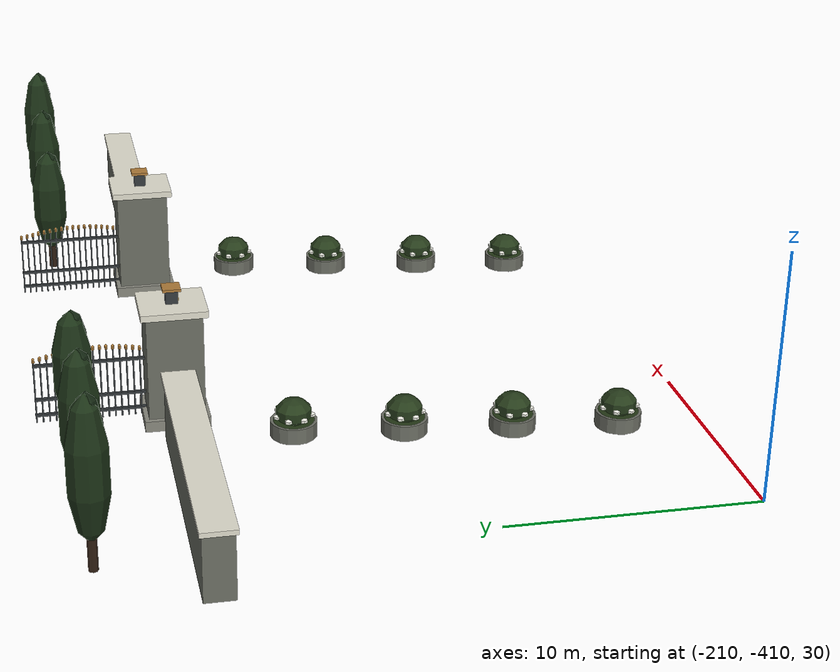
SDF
<?xml version='1.0' encoding='utf-8'?>
<sdf version="1.9">
  <model name="estate_entrance">
    <static>true</static>
    <link name="structure">
      <visual name="visual_stone">
        <geometry>
          <mesh>
            <uri>model://estate_entrance/meshes/visual/stone.dae</uri>
          </mesh>
        </geometry>
        <material>
          <ambient>0.42 0.43 0.39 1</ambient>
          <diffuse>0.42 0.43 0.39 1</diffuse>
          <specular>0.15 0.15 0.15 1</specular>
          <pbr>
            <metal>
              <roughness>0.8</roughness>
              <metalness>0.0</metalness>
            </metal>
          </pbr>
        </material>
      </visual>
      <visual name="visual_paving">
        <geometry>
          <mesh>
            <uri>model://estate_entrance/meshes/visual/paving.dae</uri>
          </mesh>
        </geometry>
        <material>
          <ambient>0.53 0.53 0.49 1</ambient>
          <diffuse>0.53 0.53 0.49 1</diffuse>
          <specular>0.15 0.15 0.15 1</specular>
          <pbr>
            <metal>
              <roughness>0.8</roughness>
              <metalness>0.0</metalness>
            </metal>
          </pbr>
        </material>
      </visual>
      <visual name="visual_ivory">
        <geometry>
          <mesh>
            <uri>model://estate_entrance/meshes/visual/ivory.dae</uri>
          </mesh>
        </geometry>
        <material>
          <ambient>0.88 0.87 0.81 1</ambient>
          <diffuse>0.88 0.87 0.81 1</diffuse>
          <specular>0.15 0.15 0.15 1</specular>
          <pbr>
            <metal>
              <roughness>0.8</roughness>
              <metalness>0.0</metalness>
            </metal>
          </pbr>
        </material>
      </visual>
      <visual name="visual_metal">
        <geometry>
          <mesh>
            <uri>model://estate_entrance/meshes/visual/metal.dae</uri>
          </mesh>
        </geometry>
        <material>
          <ambient>0.21 0.23 0.24 1</ambient>
          <diffuse>0.21 0.23 0.24 1</diffuse>
          <specular>0.15 0.15 0.15 1</specular>
          <pbr>
            <metal>
              <roughness>0.35</roughness>
              <metalness>0.65</metalness>
            </metal>
          </pbr>
        </material>
      </visual>
      <visual name="visual_trunk">
        <geometry>
          <mesh>
            <uri>model://estate_entrance/meshes/visual/trunk.dae</uri>
          </mesh>
        </geometry>
        <material>
          <ambient>0.19 0.12 0.072 1</ambient>
          <diffuse>0.19 0.12 0.072 1</diffuse>
          <specular>0.15 0.15 0.15 1</specular>
          <pbr>
            <metal>
              <roughness>0.8</roughness>
              <metalness>0.0</metalness>
            </metal>
          </pbr>
        </material>
      </visual>
      <visual name="visual_charcoal">
        <geometry>
          <mesh>
            <uri>model://estate_entrance/meshes/visual/charcoal.dae</uri>
          </mesh>
        </geometry>
        <material>
          <ambient>0.045 0.054 0.06 1</ambient>
          <diffuse>0.045 0.054 0.06 1</diffuse>
          <specular>0.15 0.15 0.15 1</specular>
          <pbr>
            <metal>
              <roughness>0.8</roughness>
              <metalness>0.0</metalness>
            </metal>
          </pbr>
        </material>
      </visual>
      <visual name="visual_brass">
        <geometry>
          <mesh>
            <uri>model://estate_entrance/meshes/visual/brass.dae</uri>
          </mesh>
        </geometry>
        <material>
          <ambient>0.68 0.48 0.22 1</ambient>
          <diffuse>0.68 0.48 0.22 1</diffuse>
          <specular>0.15 0.15 0.15 1</specular>
          <pbr>
            <metal>
              <roughness>0.35</roughness>
              <metalness>0.65</metalness>
            </metal>
          </pbr>
        </material>
      </visual>
      <visual name="visual_emissive">
        <geometry>
          <mesh>
            <uri>model://estate_entrance/meshes/visual/emissive.dae</uri>
          </mesh>
        </geometry>
        <material>
          <ambient>0.94 0.73 0.36 1</ambient>
          <diffuse>0.94 0.73 0.36 1</diffuse>
          <specular>0.15 0.15 0.15 1</specular>
          <emissive>0.517 0.4015 0.198 1</emissive>
          <pbr>
            <metal>
              <roughness>0.8</roughness>
              <metalness>0.0</metalness>
            </metal>
          </pbr>
        </material>
      </visual>
      <visual name="visual_grass_dark">
        <geometry>
          <mesh>
            <uri>model://estate_entrance/meshes/visual/grass_dark.dae</uri>
          </mesh>
        </geometry>
        <material>
          <ambient>0.14 0.22 0.085 1</ambient>
          <diffuse>0.14 0.22 0.085 1</diffuse>
          <specular>0.15 0.15 0.15 1</specular>
          <pbr>
            <metal>
              <roughness>0.8</roughness>
              <metalness>0.0</metalness>
            </metal>
          </pbr>
        </material>
      </visual>
      <visual name="visual_leaf0">
        <geometry>
          <mesh>
            <uri>model://estate_entrance/meshes/visual/leaf0.dae</uri>
          </mesh>
        </geometry>
        <material>
          <ambient>0.072 0.145 0.065 1</ambient>
          <diffuse>0.072 0.145 0.065 1</diffuse>
          <specular>0.15 0.15 0.15 1</specular>
          <pbr>
            <metal>
              <roughness>0.8</roughness>
              <metalness>0.0</metalness>
            </metal>
          </pbr>
        </material>
      </visual>
      <visual name="visual_leaf1">
        <geometry>
          <mesh>
            <uri>model://estate_entrance/meshes/visual/leaf1.dae</uri>
          </mesh>
        </geometry>
        <material>
          <ambient>0.105 0.195 0.085 1</ambient>
          <diffuse>0.105 0.195 0.085 1</diffuse>
          <specular>0.15 0.15 0.15 1</specular>
          <pbr>
            <metal>
              <roughness>0.8</roughness>
              <metalness>0.0</metalness>
            </metal>
          </pbr>
        </material>
      </visual>
      <visual name="visual_leaf2">
        <geometry>
          <mesh>
            <uri>model://estate_entrance/meshes/visual/leaf2.dae</uri>
          </mesh>
        </geometry>
        <material>
          <ambient>0.15 0.235 0.105 1</ambient>
          <diffuse>0.15 0.235 0.105 1</diffuse>
          <specular>0.15 0.15 0.15 1</specular>
          <pbr>
            <metal>
              <roughness>0.8</roughness>
              <metalness>0.0</metalness>
            </metal>
          </pbr>
        </material>
      </visual>
      <visual name="visual_white">
        <geometry>
          <mesh>
            <uri>model://estate_entrance/meshes/visual/white.dae</uri>
          </mesh>
        </geometry>
        <material>
          <ambient>0.93 0.93 0.89 1</ambient>
          <diffuse>0.93 0.93 0.89 1</diffuse>
          <specular>0.15 0.15 0.15 1</specular>
          <pbr>
            <metal>
              <roughness>0.8</roughness>
              <metalness>0.0</metalness>
            </metal>
          </pbr>
        </material>
      </visual>
      <collision name="west_gate_pier">
        <geometry>
          <box>
            <size>2.2 2.5 5.4</size>
          </box>
        </geometry>
        <pose>-192.4 -390 29.1 0 0 0</pose>
      </collision>
      <collision name="west_pier_base">
        <geometry>
          <box>
            <size>2.7 2.9 0.5</size>
          </box>
        </geometry>
        <pose>-192.4 -390 26.65 0 0 0</pose>
      </collision>
      <collision name="west_pier_cap">
        <geometry>
          <box>
            <size>2.65 2.95 0.3</size>
          </box>
        </geometry>
        <pose>-192.4 -390 31.83 0 0 0</pose>
      </collision>
      <collision name="west_leaf_rail_0.5">
        <geometry>
          <box>
            <size>0.14 5.9 0.12</size>
          </box>
        </geometry>
        <pose>-192.2 -386.8 26.9 0 0 0</pose>
      </collision>
      <collision name="west_leaf_rail_1.25">
        <geometry>
          <box>
            <size>0.14 5.9 0.12</size>
          </box>
        </geometry>
        <pose>-192.2 -386.8 27.65 0 0 0</pose>
      </collision>
      <collision name="west_leaf_rail_2.9">
        <geometry>
          <box>
            <size>0.14 5.9 0.12</size>
          </box>
        </geometry>
        <pose>-192.2 -386.8 29.3 0 0 0</pose>
      </collision>
      <collision name="west_picket_0">
        <geometry>
          <box>
            <size>0.065 0.065 2.95</size>
          </box>
        </geometry>
        <pose>-192.2 -389.7 28.025 0 0 0</pose>
      </collision>
      <collision name="west_picket_1">
        <geometry>
          <box>
            <size>0.065 0.065 3.01257</size>
          </box>
        </geometry>
        <pose>-192.2 -389.41 28.0563 0 0 0</pose>
      </collision>
      <collision name="west_picket_2">
        <geometry>
          <box>
            <size>0.065 0.065 3.07361</size>
          </box>
        </geometry>
        <pose>-192.2 -389.12 28.0868 0 0 0</pose>
      </collision>
      <collision name="west_picket_3">
        <geometry>
          <box>
            <size>0.065 0.065 3.1316</size>
          </box>
        </geometry>
        <pose>-192.2 -388.83 28.1158 0 0 0</pose>
      </collision>
      <collision name="west_picket_4">
        <geometry>
          <box>
            <size>0.065 0.065 3.18511</size>
          </box>
        </geometry>
        <pose>-192.2 -388.54 28.1426 0 0 0</pose>
      </collision>
      <collision name="west_picket_5">
        <geometry>
          <box>
            <size>0.065 0.065 3.23284</size>
          </box>
        </geometry>
        <pose>-192.2 -388.25 28.1664 0 0 0</pose>
      </collision>
      <collision name="west_picket_6">
        <geometry>
          <box>
            <size>0.065 0.065 3.27361</size>
          </box>
        </geometry>
        <pose>-192.2 -387.96 28.1868 0 0 0</pose>
      </collision>
      <collision name="west_picket_7">
        <geometry>
          <box>
            <size>0.065 0.065 3.3064</size>
          </box>
        </geometry>
        <pose>-192.2 -387.67 28.2032 0 0 0</pose>
      </collision>
      <collision name="west_picket_8">
        <geometry>
          <box>
            <size>0.065 0.065 3.33042</size>
          </box>
        </geometry>
        <pose>-192.2 -387.38 28.2152 0 0 0</pose>
      </collision>
      <collision name="west_picket_9">
        <geometry>
          <box>
            <size>0.065 0.065 3.34508</size>
          </box>
        </geometry>
        <pose>-192.2 -387.09 28.2225 0 0 0</pose>
      </collision>
      <collision name="west_picket_10">
        <geometry>
          <box>
            <size>0.065 0.065 3.35</size>
          </box>
        </geometry>
        <pose>-192.2 -386.8 28.225 0 0 0</pose>
      </collision>
      <collision name="west_picket_11">
        <geometry>
          <box>
            <size>0.065 0.065 3.34508</size>
          </box>
        </geometry>
        <pose>-192.2 -386.51 28.2225 0 0 0</pose>
      </collision>
      <collision name="west_picket_12">
        <geometry>
          <box>
            <size>0.065 0.065 3.33042</size>
          </box>
        </geometry>
        <pose>-192.2 -386.22 28.2152 0 0 0</pose>
      </collision>
      <collision name="west_picket_13">
        <geometry>
          <box>
            <size>0.065 0.065 3.3064</size>
          </box>
        </geometry>
        <pose>-192.2 -385.93 28.2032 0 0 0</pose>
      </collision>
      <collision name="west_picket_14">
        <geometry>
          <box>
            <size>0.065 0.065 3.27361</size>
          </box>
        </geometry>
        <pose>-192.2 -385.64 28.1868 0 0 0</pose>
      </collision>
      <collision name="west_picket_15">
        <geometry>
          <box>
            <size>0.065 0.065 3.23284</size>
          </box>
        </geometry>
        <pose>-192.2 -385.35 28.1664 0 0 0</pose>
      </collision>
      <collision name="west_picket_16">
        <geometry>
          <box>
            <size>0.065 0.065 3.18511</size>
          </box>
        </geometry>
        <pose>-192.2 -385.06 28.1426 0 0 0</pose>
      </collision>
      <collision name="west_picket_17">
        <geometry>
          <box>
            <size>0.065 0.065 3.1316</size>
          </box>
        </geometry>
        <pose>-192.2 -384.77 28.1158 0 0 0</pose>
      </collision>
      <collision name="west_picket_18">
        <geometry>
          <box>
            <size>0.065 0.065 3.07361</size>
          </box>
        </geometry>
        <pose>-192.2 -384.48 28.0868 0 0 0</pose>
      </collision>
      <collision name="west_picket_19">
        <geometry>
          <box>
            <size>0.065 0.065 3.01257</size>
          </box>
        </geometry>
        <pose>-192.2 -384.19 28.0563 0 0 0</pose>
      </collision>
      <collision name="west_picket_20">
        <geometry>
          <box>
            <size>0.065 0.065 2.95</size>
          </box>
        </geometry>
        <pose>-192.2 -383.9 28.025 0 0 0</pose>
      </collision>
      <collision name="west_entry_wing">
        <geometry>
          <box>
            <size>13 1.3 3</size>
          </box>
        </geometry>
        <pose>-201 -390 27.9 0 0 0</pose>
      </collision>
      <collision name="west_wing_cap">
        <geometry>
          <box>
            <size>13.4 1.5 0.22</size>
          </box>
        </geometry>
        <pose>-201 -390 29.45 0 0 0</pose>
      </collision>
      <collision name="west_entry_cypress_0_trunk">
        <geometry>
          <cylinder>
            <radius>0.2</radius>
            <length>3.1</length>
          </cylinder>
        </geometry>
        <pose>-195 -385.5 28.3 0 0 0</pose>
      </collision>
      <collision name="west_entry_cypress_1_trunk">
        <geometry>
          <cylinder>
            <radius>0.2</radius>
            <length>3.4</length>
          </cylinder>
        </geometry>
        <pose>-200 -385.5 28.45 0 0 0</pose>
      </collision>
      <collision name="west_entry_cypress_2_trunk">
        <geometry>
          <cylinder>
            <radius>0.2</radius>
            <length>3.7</length>
          </cylinder>
        </geometry>
        <pose>-205 -385.5 28.6 0 0 0</pose>
      </collision>
      <collision name="west_approach_planter_0">
        <geometry>
          <cylinder>
            <radius>1.05</radius>
            <length>0.72</length>
          </cylinder>
        </geometry>
        <pose>-194.5 -395 26.46 0 0 0</pose>
      </collision>
      <collision name="west_approach_planter_1">
        <geometry>
          <cylinder>
            <radius>1.05</radius>
            <length>0.72</length>
          </cylinder>
        </geometry>
        <pose>-194.5 -400 26.14 0 0 0</pose>
      </collision>
      <collision name="west_approach_planter_2">
        <geometry>
          <cylinder>
            <radius>1.05</radius>
            <length>0.72</length>
          </cylinder>
        </geometry>
        <pose>-194.5 -405 25.82 0 0 0</pose>
      </collision>
      <collision name="west_approach_planter_3">
        <geometry>
          <cylinder>
            <radius>1.05</radius>
            <length>0.72</length>
          </cylinder>
        </geometry>
        <pose>-194.5 -410 25.5 0 0 0</pose>
      </collision>
      <collision name="east_gate_pier">
        <geometry>
          <box>
            <size>2.2 2.5 5.4</size>
          </box>
        </geometry>
        <pose>-177.6 -390 29.1 0 0 0</pose>
      </collision>
      <collision name="east_pier_base">
        <geometry>
          <box>
            <size>2.7 2.9 0.5</size>
          </box>
        </geometry>
        <pose>-177.6 -390 26.65 0 0 0</pose>
      </collision>
      <collision name="east_pier_cap">
        <geometry>
          <box>
            <size>2.65 2.95 0.3</size>
          </box>
        </geometry>
        <pose>-177.6 -390 31.83 0 0 0</pose>
      </collision>
      <collision name="east_leaf_rail_0.5">
        <geometry>
          <box>
            <size>0.14 5.9 0.12</size>
          </box>
        </geometry>
        <pose>-177.8 -386.8 26.9 0 0 0</pose>
      </collision>
      <collision name="east_leaf_rail_1.25">
        <geometry>
          <box>
            <size>0.14 5.9 0.12</size>
          </box>
        </geometry>
        <pose>-177.8 -386.8 27.65 0 0 0</pose>
      </collision>
      <collision name="east_leaf_rail_2.9">
        <geometry>
          <box>
            <size>0.14 5.9 0.12</size>
          </box>
        </geometry>
        <pose>-177.8 -386.8 29.3 0 0 0</pose>
      </collision>
      <collision name="east_picket_0">
        <geometry>
          <box>
            <size>0.065 0.065 2.95</size>
          </box>
        </geometry>
        <pose>-177.8 -389.7 28.025 0 0 0</pose>
      </collision>
      <collision name="east_picket_1">
        <geometry>
          <box>
            <size>0.065 0.065 3.01257</size>
          </box>
        </geometry>
        <pose>-177.8 -389.41 28.0563 0 0 0</pose>
      </collision>
      <collision name="east_picket_2">
        <geometry>
          <box>
            <size>0.065 0.065 3.07361</size>
          </box>
        </geometry>
        <pose>-177.8 -389.12 28.0868 0 0 0</pose>
      </collision>
      <collision name="east_picket_3">
        <geometry>
          <box>
            <size>0.065 0.065 3.1316</size>
          </box>
        </geometry>
        <pose>-177.8 -388.83 28.1158 0 0 0</pose>
      </collision>
      <collision name="east_picket_4">
        <geometry>
          <box>
            <size>0.065 0.065 3.18511</size>
          </box>
        </geometry>
        <pose>-177.8 -388.54 28.1426 0 0 0</pose>
      </collision>
      <collision name="east_picket_5">
        <geometry>
          <box>
            <size>0.065 0.065 3.23284</size>
          </box>
        </geometry>
        <pose>-177.8 -388.25 28.1664 0 0 0</pose>
      </collision>
      <collision name="east_picket_6">
        <geometry>
          <box>
            <size>0.065 0.065 3.27361</size>
          </box>
        </geometry>
        <pose>-177.8 -387.96 28.1868 0 0 0</pose>
      </collision>
      <collision name="east_picket_7">
        <geometry>
          <box>
            <size>0.065 0.065 3.3064</size>
          </box>
        </geometry>
        <pose>-177.8 -387.67 28.2032 0 0 0</pose>
      </collision>
      <collision name="east_picket_8">
        <geometry>
          <box>
            <size>0.065 0.065 3.33042</size>
          </box>
        </geometry>
        <pose>-177.8 -387.38 28.2152 0 0 0</pose>
      </collision>
      <collision name="east_picket_9">
        <geometry>
          <box>
            <size>0.065 0.065 3.34508</size>
          </box>
        </geometry>
        <pose>-177.8 -387.09 28.2225 0 0 0</pose>
      </collision>
      <collision name="east_picket_10">
        <geometry>
          <box>
            <size>0.065 0.065 3.35</size>
          </box>
        </geometry>
        <pose>-177.8 -386.8 28.225 0 0 0</pose>
      </collision>
      <collision name="east_picket_11">
        <geometry>
          <box>
            <size>0.065 0.065 3.34508</size>
          </box>
        </geometry>
        <pose>-177.8 -386.51 28.2225 0 0 0</pose>
      </collision>
      <collision name="east_picket_12">
        <geometry>
          <box>
            <size>0.065 0.065 3.33042</size>
          </box>
        </geometry>
        <pose>-177.8 -386.22 28.2152 0 0 0</pose>
      </collision>
      <collision name="east_picket_13">
        <geometry>
          <box>
            <size>0.065 0.065 3.3064</size>
          </box>
        </geometry>
        <pose>-177.8 -385.93 28.2032 0 0 0</pose>
      </collision>
      <collision name="east_picket_14">
        <geometry>
          <box>
            <size>0.065 0.065 3.27361</size>
          </box>
        </geometry>
        <pose>-177.8 -385.64 28.1868 0 0 0</pose>
      </collision>
      <collision name="east_picket_15">
        <geometry>
          <box>
            <size>0.065 0.065 3.23284</size>
          </box>
        </geometry>
        <pose>-177.8 -385.35 28.1664 0 0 0</pose>
      </collision>
      <collision name="east_picket_16">
        <geometry>
          <box>
            <size>0.065 0.065 3.18511</size>
          </box>
        </geometry>
        <pose>-177.8 -385.06 28.1426 0 0 0</pose>
      </collision>
      <collision name="east_picket_17">
        <geometry>
          <box>
            <size>0.065 0.065 3.1316</size>
          </box>
        </geometry>
        <pose>-177.8 -384.77 28.1158 0 0 0</pose>
      </collision>
      <collision name="east_picket_18">
        <geometry>
          <box>
            <size>0.065 0.065 3.07361</size>
          </box>
        </geometry>
        <pose>-177.8 -384.48 28.0868 0 0 0</pose>
      </collision>
      <collision name="east_picket_19">
        <geometry>
          <box>
            <size>0.065 0.065 3.01257</size>
          </box>
        </geometry>
        <pose>-177.8 -384.19 28.0563 0 0 0</pose>
      </collision>
      <collision name="east_picket_20">
        <geometry>
          <box>
            <size>0.065 0.065 2.95</size>
          </box>
        </geometry>
        <pose>-177.8 -383.9 28.025 0 0 0</pose>
      </collision>
      <collision name="east_entry_wing">
        <geometry>
          <box>
            <size>13 1.3 3</size>
          </box>
        </geometry>
        <pose>-169 -390 27.9 0 0 0</pose>
      </collision>
      <collision name="east_wing_cap">
        <geometry>
          <box>
            <size>13.4 1.5 0.22</size>
          </box>
        </geometry>
        <pose>-169 -390 29.45 0 0 0</pose>
      </collision>
      <collision name="east_entry_cypress_0_trunk">
        <geometry>
          <cylinder>
            <radius>0.2</radius>
            <length>3.1</length>
          </cylinder>
        </geometry>
        <pose>-175 -385.5 28.3 0 0 0</pose>
      </collision>
      <collision name="east_entry_cypress_1_trunk">
        <geometry>
          <cylinder>
            <radius>0.2</radius>
            <length>3.4</length>
          </cylinder>
        </geometry>
        <pose>-170 -385.5 28.45 0 0 0</pose>
      </collision>
      <collision name="east_entry_cypress_2_trunk">
        <geometry>
          <cylinder>
            <radius>0.2</radius>
            <length>3.7</length>
          </cylinder>
        </geometry>
        <pose>-165 -385.5 28.6 0 0 0</pose>
      </collision>
      <collision name="east_approach_planter_0">
        <geometry>
          <cylinder>
            <radius>1.05</radius>
            <length>0.72</length>
          </cylinder>
        </geometry>
        <pose>-175.5 -395 26.46 0 0 0</pose>
      </collision>
      <collision name="east_approach_planter_1">
        <geometry>
          <cylinder>
            <radius>1.05</radius>
            <length>0.72</length>
          </cylinder>
        </geometry>
        <pose>-175.5 -400 26.14 0 0 0</pose>
      </collision>
      <collision name="east_approach_planter_2">
        <geometry>
          <cylinder>
            <radius>1.05</radius>
            <length>0.72</length>
          </cylinder>
        </geometry>
        <pose>-175.5 -405 25.82 0 0 0</pose>
      </collision>
      <collision name="east_approach_planter_3">
        <geometry>
          <cylinder>
            <radius>1.05</radius>
            <length>0.72</length>
          </cylinder>
        </geometry>
        <pose>-175.5 -410 25.5 0 0 0</pose>
      </collision>
    </link>
  </model>
</sdf>
